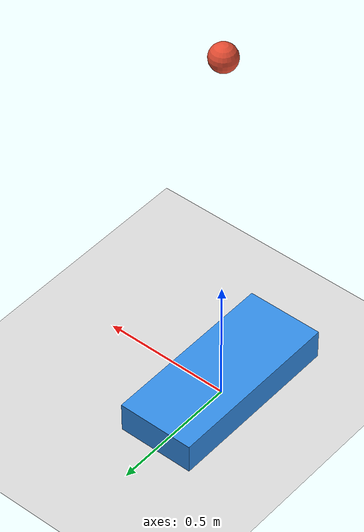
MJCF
<mujoco model="paddle_catch">
  <!-- 机映 RoboReflex M1：平面挡板接球场景
       物理步进 500Hz（timestep=0.002），挡板 1 自由度沿 x 滑动，
       小球为自由刚体，reset 后由环境钉在发球点、到设定时刻释放。 -->
  <compiler angle="radian"/>
  <option timestep="0.002" gravity="0 0 -9.81" integrator="RK4"/>
  <visual>
    <headlight ambient="0.4 0.4 0.4" diffuse="0.8 0.8 0.8"/>
  </visual>

  <worldbody>
    <light pos="0 -2 4" dir="0 0.5 -1" diffuse="0.9 0.9 0.9"/>
    <!-- 侧视相机：沿 -y 看 x-z 平面，挡板横移动作在画面内左右可见 -->
    <camera name="side" pos="0 -3.5 0.9" xyaxes="1 0 0 0 0 1" fovy="45"/>
    <geom name="floor" type="plane" pos="0 0 0" size="6 6 0.1"
          rgba="0.85 0.85 0.85 1" condim="3"/>

    <!-- 挡板：slide joint 沿 x 轴，配 velocity 执行器（动作=目标速度） -->
    <body name="paddle" pos="0 0 0.06">
      <joint name="paddle_slide" type="slide" axis="1 0 0"
             range="-1.0 1.0" damping="0.5"/>
      <geom name="paddle_geom" type="box" size="0.15 0.35 0.06" mass="1.0"
            rgba="0.2 0.55 0.9 1" condim="3"/>
    </body>

    <!-- 小球：自由刚体 -->
    <body name="ball" pos="0 0 1.5">
      <joint name="ball_free" type="free"/>
      <geom name="ball_geom" type="sphere" size="0.05" mass="0.05"
            rgba="0.9 0.3 0.2 1" condim="3"/>
    </body>
  </worldbody>

  <actuator>
    <!-- 速度执行器：ctrl 即目标速度（m/s），kv 为跟踪增益 -->
    <velocity name="paddle_vel" joint="paddle_slide" kv="50"
              ctrlrange="-6 6" forcerange="-100 100"/>
  </actuator>
</mujoco>
